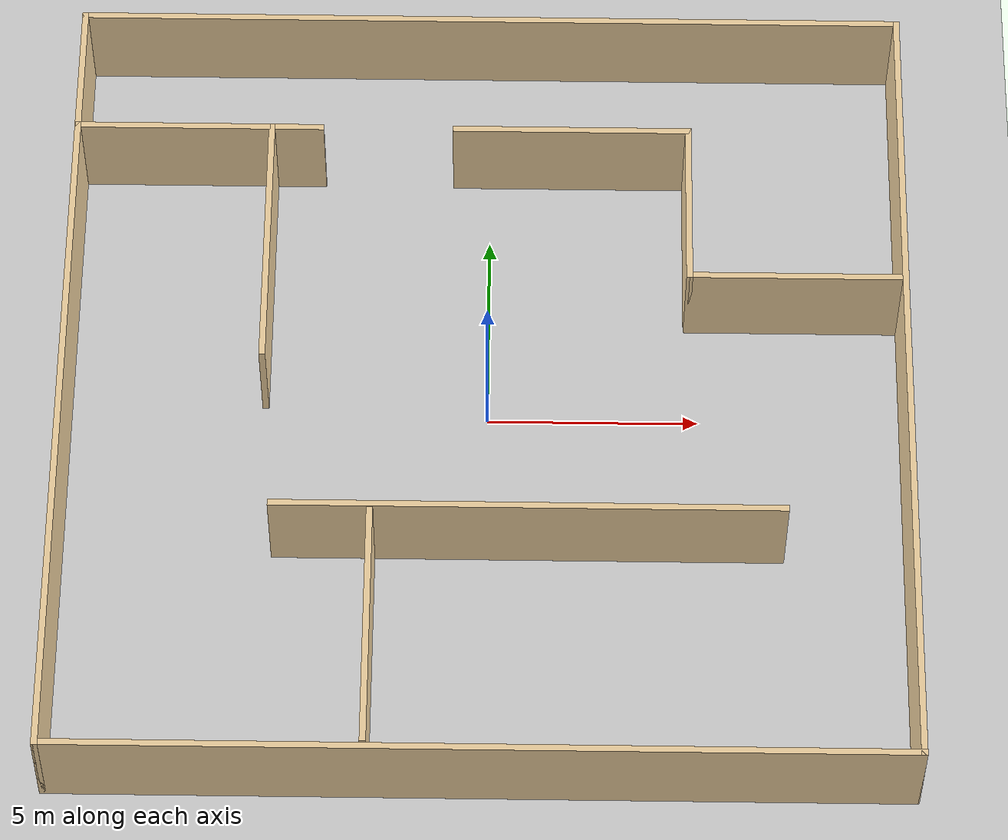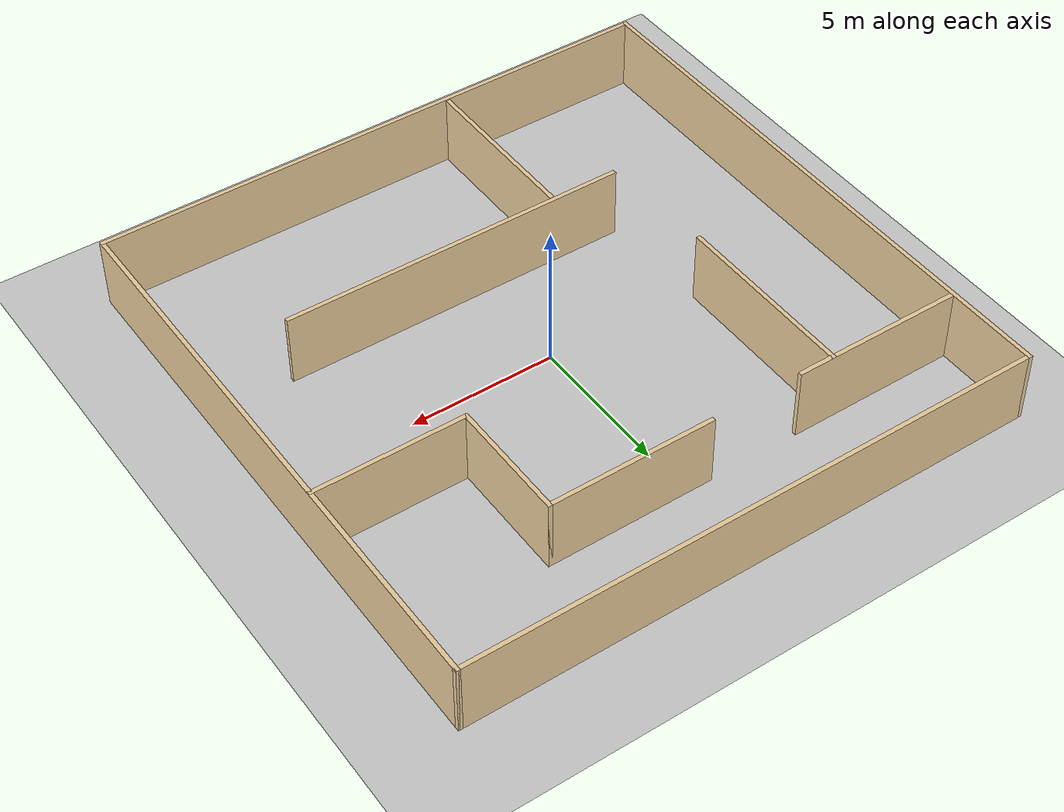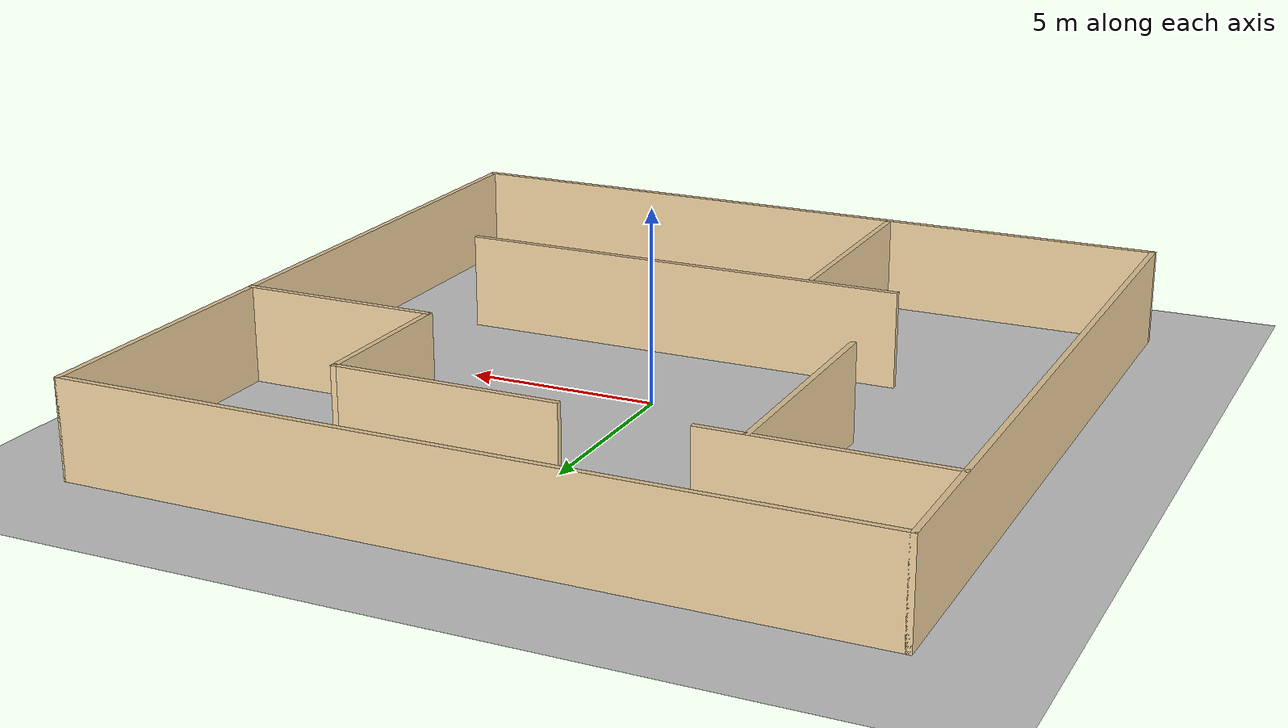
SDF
<sdf version="1.7">
 <world name="default">
  <light name="sun" type="directional">
   <pose>0 0 10 0 -0 0</pose>
   <diffuse>0.8 0.8 0.8 1</diffuse>
   <specular>0.2 0.2 0.2 1</specular>
   <attenuation>
    <range>1000</range>
    <constant>0.9</constant>
    <linear>0.01</linear>
    <quadratic>0.001</quadratic>
   </attenuation>
   <direction>-0.5 0.1 -0.9</direction>
   <spot><inner_angle>0</inner_angle><outer_angle>0</outer_angle><falloff>0</falloff></spot>
  </light>
  <model name="ground_plane">
   <static>1</static>
   <link name="link">
    <collision name="collision">
     <geometry><plane><normal>0 0 1</normal><size>100 100</size></plane></geometry>
     <surface>
      <contact><collide_bitmask>65535</collide_bitmask></contact>
      <friction><ode><mu>1000</mu><mu2>500</mu2></ode></friction>
     </surface>
    </collision>
    <visual name="visual">
     <cast_shadows>0</cast_shadows>
     <geometry><plane><normal>0 0 1</normal><size>100 100</size></plane></geometry>
     <material>
      <script><uri>file://media/materials/scripts/gazebo.material</uri><name>Gazebo/Grey</name></script>
     </material>
    </visual>
   </link>
  </model>
  <gravity>0 0 -9.8</gravity>
  <magnetic_field>6e-06 2.3e-05 -4.2e-05</magnetic_field>
  <atmosphere type="adiabatic"/>
  <physics type="ode">
   <max_step_size>0.001</max_step_size>
   <real_time_factor>1</real_time_factor>
   <real_time_update_rate>1000</real_time_update_rate>
  </physics>
  <scene><ambient>0.4 0.4 0.4 1</ambient><background>0.7 0.7 0.7 1</background><shadows>1</shadows></scene>
  <spherical_coordinates>
   <surface_model>EARTH_WGS84</surface_model>
   <latitude_deg>0</latitude_deg>
   <longitude_deg>0</longitude_deg>
   <elevation>0</elevation>
   <heading_deg>0</heading_deg>
  </spherical_coordinates>
  <model name="building_001">
   <pose>-0.062002 0.035845 0 0 -0 0</pose>
   <link name="Wall_41">
    <collision name="Wall_41_Collision">
     <geometry><box><size>20 0.15 2.5</size></box></geometry>
     <pose>0 0 1.25 0 -0 0</pose>
    </collision>
    <visual name="Wall_41_Visual">
     <pose>0 0 1.25 0 -0 0</pose>
     <geometry><box><size>20 0.15 2.5</size></box></geometry>
     <material>
      <script><uri>file://media/materials/scripts/gazebo.material</uri><name>Gazebo/Grey</name></script>
      <ambient>0.921569 0.807843 0.615686 1</ambient>
     </material>
     <meta><layer>0</layer></meta>
    </visual>
    <pose>-9.925 0 0 0 -0 1.5708</pose>
   </link>
   <link name="Wall_43">
    <collision name="Wall_43_Collision">
     <geometry><box><size>20 0.15 2.5</size></box></geometry>
     <pose>0 0 1.25 0 -0 0</pose>
    </collision>
    <visual name="Wall_43_Visual">
     <pose>0 0 1.25 0 -0 0</pose>
     <geometry><box><size>20 0.15 2.5</size></box></geometry>
     <material>
      <script><uri>file://media/materials/scripts/gazebo.material</uri><name>Gazebo/Grey</name></script>
      <ambient>0.921569 0.807843 0.615686 1</ambient>
     </material>
     <meta><layer>0</layer></meta>
    </visual>
    <pose>-0 9.925 0 0 -0 0</pose>
   </link>
   <link name="Wall_49">
    <collision name="Wall_49_Collision">
     <geometry><box><size>20 0.15 2.5</size></box></geometry>
     <pose>0 0 1.25 0 -0 0</pose>
    </collision>
    <visual name="Wall_49_Visual">
     <pose>0 0 1.25 0 -0 0</pose>
     <geometry><box><size>20 0.15 2.5</size></box></geometry>
     <material>
      <script><uri>file://media/materials/scripts/gazebo.material</uri><name>Gazebo/Grey</name></script>
      <ambient>0.921569 0.807843 0.615686 1</ambient>
     </material>
     <meta><layer>0</layer></meta>
    </visual>
    <pose>-0 -9.925 0 0 -0 0</pose>
   </link>
   <link name="Wall_51">
    <collision name="Wall_51_Collision">
     <geometry><box><size>20 0.15 2.5</size></box></geometry>
     <pose>0 0 1.25 0 -0 0</pose>
    </collision>
    <visual name="Wall_51_Visual">
     <pose>0 0 1.25 0 -0 0</pose>
     <geometry><box><size>20 0.15 2.5</size></box></geometry>
     <material>
      <script><uri>file://media/materials/scripts/gazebo.material</uri><name>Gazebo/Grey</name></script>
      <ambient>0.921569 0.807843 0.615686 1</ambient>
     </material>
     <meta><layer>0</layer></meta>
    </visual>
    <pose>9.925 0 0 0 -0 1.5708</pose>
   </link>
   <link name="Wall_55">
    <collision name="Wall_55_Collision">
     <geometry><box><size>6 0.15 2.5</size></box></geometry>
     <pose>0 0 1.25 0 -0 0</pose>
    </collision>
    <visual name="Wall_55_Visual">
     <pose>0 0 1.25 0 -0 0</pose>
     <geometry><box><size>6 0.15 2.5</size></box></geometry>
     <material>
      <script><uri>file://media/materials/scripts/gazebo.material</uri><name>Gazebo/Grey</name></script>
      <ambient>0.921569 0.807843 0.615686 1</ambient>
     </material>
     <meta><layer>0</layer></meta>
    </visual>
    <pose>-6.98548 6.68858 0 0 -0 0</pose>
   </link>
   <link name="Wall_57">
    <collision name="Wall_57_Collision">
     <geometry><box><size>5.75 0.15 2.5</size></box></geometry>
     <pose>0 0 1.25 0 -0 0</pose>
    </collision>
    <visual name="Wall_57_Visual">
     <pose>0 0 1.25 0 -0 0</pose>
     <geometry><box><size>5.75 0.15 2.5</size></box></geometry>
     <material>
      <script><uri>file://media/materials/scripts/gazebo.material</uri><name>Gazebo/Grey</name></script>
      <ambient>0.921569 0.807843 0.615686 1</ambient>
     </material>
     <meta><layer>0</layer></meta>
    </visual>
    <pose>2.00886 6.68858 0 0 -0 0</pose>
   </link>
   <link name="Wall_59">
    <collision name="Wall_59_Collision">
     <geometry><box><size>4.25 0.15 2.5</size></box></geometry>
     <pose>0 0 1.25 0 -0 0</pose>
    </collision>
    <visual name="Wall_59_Visual">
     <pose>0 0 1.25 0 -0 0</pose>
     <geometry><box><size>4.25 0.15 2.5</size></box></geometry>
     <material>
      <script><uri>file://media/materials/scripts/gazebo.material</uri><name>Gazebo/Grey</name></script>
      <ambient>0.921569 0.807843 0.615686 1</ambient>
     </material>
     <meta><layer>0</layer></meta>
    </visual>
    <pose>4.80886 4.63858 0 0 -0 -1.5708</pose>
   </link>
   <link name="Wall_60">
    <collision name="Wall_60_Collision">
     <geometry><box><size>5.25 0.15 2.5</size></box></geometry>
     <pose>0 0 1.25 0 -0 0</pose>
    </collision>
    <visual name="Wall_60_Visual">
     <pose>0 0 1.25 0 -0 0</pose>
     <geometry><box><size>5.25 0.15 2.5</size></box></geometry>
     <material>
      <script><uri>file://media/materials/scripts/gazebo.material</uri><name>Gazebo/Grey</name></script>
      <ambient>0.921569 0.807843 0.615686 1</ambient>
     </material>
     <meta><layer>0</layer></meta>
    </visual>
    <pose>7.35886 2.58858 0 0 -0 0</pose>
   </link>
   <link name="Wall_62">
    <collision name="Wall_62_Collision">
     <geometry><box><size>12 0.15 2.5</size></box></geometry>
     <pose>0 0 1.25 0 -0 0</pose>
    </collision>
    <visual name="Wall_62_Visual">
     <pose>0 0 1.25 0 -0 0</pose>
     <geometry><box><size>12 0.15 2.5</size></box></geometry>
     <material>
      <script><uri>file://media/materials/scripts/gazebo.material</uri><name>Gazebo/Grey</name></script>
      <ambient>0.921569 0.807843 0.615686 1</ambient>
     </material>
     <meta><layer>0</layer></meta>
    </visual>
    <pose>1.03995 -3.72488 0 0 -0 0</pose>
   </link>
   <link name="Wall_64">
    <collision name="Wall_64_Collision">
     <geometry><box><size>6 0.15 2.5</size></box></geometry>
     <pose>0 0 1.25 0 -0 0</pose>
    </collision>
    <visual name="Wall_64_Visual">
     <pose>0 0 1.25 0 -0 0</pose>
     <geometry><box><size>6 0.15 2.5</size></box></geometry>
     <material>
      <script><uri>file://media/materials/scripts/gazebo.material</uri><name>Gazebo/Grey</name></script>
      <ambient>0.921569 0.807843 0.615686 1</ambient>
     </material>
     <meta><layer>0</layer></meta>
    </visual>
    <pose>-2.60546 -6.81024 0 0 -0 -1.5708</pose>
   </link>
   <link name="Wall_66">
    <collision name="Wall_66_Collision">
     <geometry><box><size>6.5 0.15 2.5</size></box></geometry>
     <pose>0 0 1.25 0 -0 0</pose>
    </collision>
    <visual name="Wall_66_Visual">
     <pose>0 0 1.25 0 -0 0</pose>
     <geometry><box><size>6.5 0.15 2.5</size></box></geometry>
     <material>
      <script><uri>file://media/materials/scripts/gazebo.material</uri><name>Gazebo/Grey</name></script>
      <ambient>0.921569 0.807843 0.615686 1</ambient>
     </material>
     <meta><layer>0</layer></meta>
    </visual>
    <pose>-5.23544 3.51286 0 0 -0 -1.5708</pose>
   </link>
   <static>1</static>
  </model>
 </world>
</sdf>
